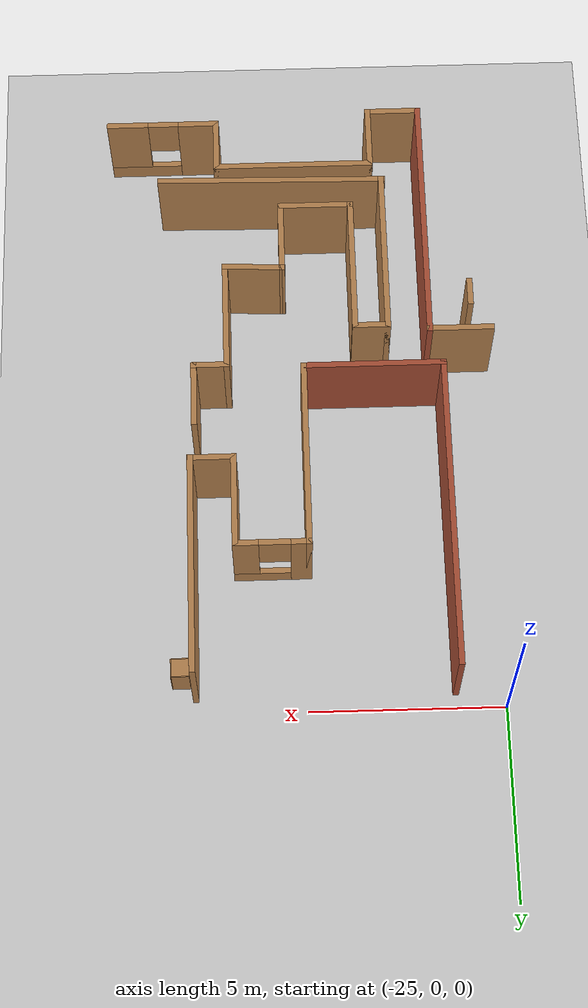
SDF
<sdf version="1.7">
 <world name="default">
  <model name="ground_plane">
   <static>1</static>
   <link name="link">
    <collision name="collision">
     <geometry><plane><normal>0 0 1</normal><size>100 100</size></plane></geometry>
     <surface><friction><ode><mu>100</mu><mu2>50</mu2></ode></friction></surface>
    </collision>
    <visual name="visual">
     <cast_shadows>0</cast_shadows>
     <geometry><plane><normal>0 0 1</normal><size>100 100</size></plane></geometry>
     <material>
      <script><uri>file://media/materials/scripts/gazebo.material</uri><name>Gazebo/Grey</name></script>
     </material>
    </visual>
   </link>
  </model>
  <model name="simple_maze">
   <pose>-16.3821 -8.2673 0 0 -0 0</pose>
   <link name="Wall_34">
    <collision name="Wall_34_Collision">
     <geometry><box><size>8.25 0.15 2.5</size></box></geometry>
     <pose>0 0 1.25 0 -0 0</pose>
    </collision>
    <visual name="Wall_34_Visual">
     <pose>0 0 1.25 0 -0 0</pose>
     <geometry><box><size>8.25 0.15 2.5</size></box></geometry>
     <material>
      <script><uri>file://media/materials/scripts/gazebo.material</uri><name>Gazebo/Bricks</name></script>
      <ambient>1 1 1 1</ambient>
     </material>
     <meta><layer>0</layer></meta>
    </visual>
    <pose>-7.34482 3.78737 0 0 -0 -1.5708</pose>
   </link>
   <link name="Wall_35">
    <collision name="Wall_35_Collision">
     <geometry><box><size>3.75 0.15 2.5</size></box></geometry>
     <pose>0 0 1.25 0 -0 0</pose>
    </collision>
    <visual name="Wall_35_Visual">
     <pose>0 0 1.25 0 -0 0</pose>
     <geometry><box><size>3.75 0.15 2.5</size></box></geometry>
     <material>
      <script><uri>file://media/materials/scripts/gazebo.material</uri><name>Gazebo/Bricks</name></script>
      <ambient>1 1 1 1</ambient>
     </material>
     <meta><layer>0</layer></meta>
    </visual>
    <pose>-5.54482 -0.26263 0 0 -0 0</pose>
   </link>
   <link name="Wall_36">
    <collision name="Wall_36_Collision">
     <geometry><box><size>5 0.15 2.5</size></box></geometry>
     <pose>0 0 1.25 0 -0 0</pose>
    </collision>
    <visual name="Wall_36_Visual">
     <pose>0 0 1.25 0 -0 0</pose>
     <geometry><box><size>5 0.15 2.5</size></box></geometry>
     <material>
      <script><uri>file://media/materials/scripts/gazebo.material</uri><name>Gazebo/Wood</name></script>
      <ambient>1 1 1 1</ambient>
     </material>
     <meta><layer>0</layer></meta>
    </visual>
    <pose>-3.74482 2.16237 0 0 -0 1.5708</pose>
   </link>
   <link name="Wall_37">
    <pose>-2.81982 4.58737 0 0 -0 0</pose>
    <visual name="Wall_37_Visual_0">
     <pose>-0.73022 0 1.25 0 -0 0</pose>
     <geometry><box><size>0.539559 0.15 2.5</size></box></geometry>
     <material>
      <script><uri>file://media/materials/scripts/gazebo.material</uri><name>Gazebo/Wood</name></script>
      <ambient>1 1 1 1</ambient>
     </material>
     <meta><layer>0</layer></meta>
    </visual>
    <collision name="Wall_37_Collision_0">
     <geometry><box><size>0.539559 0.15 2.5</size></box></geometry>
     <pose>-0.73022 0 1.25 0 -0 0</pose>
    </collision>
    <visual name="Wall_37_Visual_1">
     <pose>0.26978 0 0.25 0 -0 0</pose>
     <geometry><box><size>1.46044 0.15 0.5</size></box></geometry>
     <material>
      <script><uri>file://media/materials/scripts/gazebo.material</uri><name>Gazebo/Wood</name></script>
      <ambient>1 1 1 1</ambient>
     </material>
     <meta><layer>0</layer></meta>
    </visual>
    <collision name="Wall_37_Collision_1">
     <geometry><box><size>1.46044 0.15 0.5</size></box></geometry>
     <pose>0.26978 0 0.25 0 -0 0</pose>
    </collision>
    <visual name="Wall_37_Visual_2">
     <pose>0.66978 0 1.5 0 -0 0</pose>
     <geometry><box><size>0.660441 0.15 2</size></box></geometry>
     <material>
      <script><uri>file://media/materials/scripts/gazebo.material</uri><name>Gazebo/Wood</name></script>
      <ambient>1 1 1 1</ambient>
     </material>
     <meta><layer>0</layer></meta>
    </visual>
    <collision name="Wall_37_Collision_2">
     <geometry><box><size>0.660441 0.15 2</size></box></geometry>
     <pose>0.66978 0 1.5 0 -0 0</pose>
    </collision>
    <visual name="Wall_37_Visual_3">
     <pose>-0.060441 0 1.9 0 -0 0</pose>
     <geometry><box><size>0.8 0.15 1.2</size></box></geometry>
     <material>
      <script><uri>file://media/materials/scripts/gazebo.material</uri><name>Gazebo/Wood</name></script>
      <ambient>1 1 1 1</ambient>
     </material>
     <meta><layer>0</layer></meta>
    </visual>
    <collision name="Wall_37_Collision_3">
     <geometry><box><size>0.8 0.15 1.2</size></box></geometry>
     <pose>-0.060441 0 1.9 0 -0 0</pose>
    </collision>
   </link>
   <link name="Wall_38">
    <collision name="Wall_38_Collision">
     <geometry><box><size>2.5 0.15 2.5</size></box></geometry>
     <pose>0 0 1.25 0 -0 0</pose>
    </collision>
    <visual name="Wall_38_Visual">
     <pose>0 0 1.25 0 -0 0</pose>
     <geometry><box><size>2.5 0.15 2.5</size></box></geometry>
     <material>
      <script><uri>file://media/materials/scripts/gazebo.material</uri><name>Gazebo/Wood</name></script>
      <ambient>1 1 1 1</ambient>
     </material>
     <meta><layer>0</layer></meta>
    </visual>
    <pose>-1.89482 3.41237 0 0 -0 -1.5708</pose>
   </link>
   <link name="Wall_39">
    <collision name="Wall_39_Collision">
     <geometry><box><size>1.25 0.15 2.5</size></box></geometry>
     <pose>0 0 1.25 0 -0 0</pose>
    </collision>
    <visual name="Wall_39_Visual">
     <pose>0 0 1.25 0 -0 0</pose>
     <geometry><box><size>1.25 0.15 2.5</size></box></geometry>
     <material>
      <script><uri>file://media/materials/scripts/gazebo.material</uri><name>Gazebo/Wood</name></script>
      <ambient>1 1 1 1</ambient>
     </material>
     <meta><layer>0</layer></meta>
    </visual>
    <pose>-1.34482 2.23737 0 0 -0 0</pose>
   </link>
   <link name="Wall_40">
    <collision name="Wall_40_Collision">
     <geometry><box><size>5.75 0.15 2.5</size></box></geometry>
     <pose>0 0 1.25 0 -0 0</pose>
    </collision>
    <visual name="Wall_40_Visual">
     <pose>0 0 1.25 0 -0 0</pose>
     <geometry><box><size>5.75 0.15 2.5</size></box></geometry>
     <material>
      <script><uri>file://media/materials/scripts/gazebo.material</uri><name>Gazebo/Wood</name></script>
      <ambient>1 1 1 1</ambient>
     </material>
     <meta><layer>0</layer></meta>
    </visual>
    <pose>-0.794816 5.03737 0 0 -0 1.5708</pose>
   </link>
   <link name="Wall_63">
    <collision name="Wall_63_Collision">
     <geometry><box><size>0.75 0.15 2.5</size></box></geometry>
     <pose>0 0 1.25 0 -0 0</pose>
    </collision>
    <visual name="Wall_63_Visual">
     <pose>0 0 1.25 0 -0 0</pose>
     <geometry><box><size>0.75 0.15 2.5</size></box></geometry>
     <material>
      <script><uri>file://media/materials/scripts/gazebo.material</uri><name>Gazebo/Wood</name></script>
      <ambient>1 1 1 1</ambient>
     </material>
     <meta><layer>0</layer></meta>
    </visual>
    <pose>-8.14175 -2.28737 0 0 -0 1.5708</pose>
   </link>
   <link name="Wall_68">
    <collision name="Wall_68_Collision">
     <geometry><box><size>1.75 0.15 2.5</size></box></geometry>
     <pose>0 0 1.25 0 -0 0</pose>
    </collision>
    <visual name="Wall_68_Visual">
     <pose>0 0 1.25 0 -0 0</pose>
     <geometry><box><size>1.75 0.15 2.5</size></box></geometry>
     <material>
      <script><uri>file://media/materials/scripts/gazebo.material</uri><name>Gazebo/Wood</name></script>
      <ambient>1 1 1 1</ambient>
     </material>
     <meta><layer>0</layer></meta>
    </visual>
    <pose>-7.84175 -1.23737 0 0 -0 0</pose>
   </link>
   <link name="Wall_69">
    <collision name="Wall_69_Collision">
     <geometry><box><size>6.75 0.15 2.5</size></box></geometry>
     <pose>0 0 1.25 0 -0 0</pose>
    </collision>
    <visual name="Wall_69_Visual">
     <pose>0 0 1.25 0 -0 0</pose>
     <geometry><box><size>6.75 0.15 2.5</size></box></geometry>
     <material>
      <script><uri>file://media/materials/scripts/gazebo.material</uri><name>Gazebo/Bricks</name></script>
      <ambient>1 1 1 1</ambient>
     </material>
     <meta><layer>0</layer></meta>
    </visual>
    <pose>-7.04175 -4.53737 0 0 -0 -1.5708</pose>
   </link>
   <link name="Wall_70">
    <collision name="Wall_70_Collision">
     <geometry><box><size>1.5 0.15 2.5</size></box></geometry>
     <pose>0 0 1.25 0 -0 0</pose>
    </collision>
    <visual name="Wall_70_Visual">
     <pose>0 0 1.25 0 -0 0</pose>
     <geometry><box><size>1.5 0.15 2.5</size></box></geometry>
     <material>
      <script><uri>file://media/materials/scripts/gazebo.material</uri><name>Gazebo/Wood</name></script>
      <ambient>1 1 1 1</ambient>
     </material>
     <meta><layer>0</layer></meta>
    </visual>
    <pose>-6.36675 -7.83737 0 0 -0 0</pose>
   </link>
   <link name="Wall_71">
    <collision name="Wall_71_Collision">
     <geometry><box><size>1.75 0.15 2.5</size></box></geometry>
     <pose>0 0 1.25 0 -0 0</pose>
    </collision>
    <visual name="Wall_71_Visual">
     <pose>0 0 1.25 0 -0 0</pose>
     <geometry><box><size>1.75 0.15 2.5</size></box></geometry>
     <material>
      <script><uri>file://media/materials/scripts/gazebo.material</uri><name>Gazebo/Wood</name></script>
      <ambient>1 1 1 1</ambient>
     </material>
     <meta><layer>0</layer></meta>
    </visual>
    <pose>-5.69175 -7.03737 0 0 -0 1.5708</pose>
   </link>
   <link name="Wall_72">
    <collision name="Wall_72_Collision">
     <geometry><box><size>4.25 0.15 2.5</size></box></geometry>
     <pose>0 0 1.25 0 -0 0</pose>
    </collision>
    <visual name="Wall_72_Visual">
     <pose>0 0 1.25 0 -0 0</pose>
     <geometry><box><size>4.25 0.15 2.5</size></box></geometry>
     <material>
      <script><uri>file://media/materials/scripts/gazebo.material</uri><name>Gazebo/Wood</name></script>
      <ambient>1 1 1 1</ambient>
     </material>
     <meta><layer>0</layer></meta>
    </visual>
    <pose>-3.64175 -6.23737 0 0 -0 0</pose>
   </link>
   <link name="Wall_73">
    <collision name="Wall_73_Collision">
     <geometry><box><size>1.5 0.15 2.5</size></box></geometry>
     <pose>0 0 1.25 0 -0 0</pose>
    </collision>
    <visual name="Wall_73_Visual">
     <pose>0 0 1.25 0 -0 0</pose>
     <geometry><box><size>1.5 0.15 2.5</size></box></geometry>
     <material>
      <script><uri>file://media/materials/scripts/gazebo.material</uri><name>Gazebo/Wood</name></script>
      <ambient>1 1 1 1</ambient>
     </material>
     <meta><layer>0</layer></meta>
    </visual>
    <pose>-1.59175 -6.91237 0 0 -0 -1.5708</pose>
   </link>
   <link name="Wall_74">
    <pose>-0.166749 -7.58737 0 0 -0 0</pose>
    <visual name="Wall_74_Visual_0">
     <pose>-0.951492 0 1.25 0 -0 0</pose>
     <geometry><box><size>1.09702 0.15 2.5</size></box></geometry>
     <material>
      <script><uri>file://media/materials/scripts/gazebo.material</uri><name>Gazebo/Wood</name></script>
      <ambient>1 1 1 1</ambient>
     </material>
     <meta><layer>0</layer></meta>
    </visual>
    <collision name="Wall_74_Collision_0">
     <geometry><box><size>1.09702 0.15 2.5</size></box></geometry>
     <pose>-0.951492 0 1.25 0 -0 0</pose>
    </collision>
    <visual name="Wall_74_Visual_1">
     <pose>0.548508 0 0.25 0 -0 0</pose>
     <geometry><box><size>1.90298 0.15 0.5</size></box></geometry>
     <material>
      <script><uri>file://media/materials/scripts/gazebo.material</uri><name>Gazebo/Wood</name></script>
      <ambient>1 1 1 1</ambient>
     </material>
     <meta><layer>0</layer></meta>
    </visual>
    <collision name="Wall_74_Collision_1">
     <geometry><box><size>1.90298 0.15 0.5</size></box></geometry>
     <pose>0.548508 0 0.25 0 -0 0</pose>
    </collision>
    <visual name="Wall_74_Visual_2">
     <pose>0.948508 0 1.5 0 -0 0</pose>
     <geometry><box><size>1.10298 0.15 2</size></box></geometry>
     <material>
      <script><uri>file://media/materials/scripts/gazebo.material</uri><name>Gazebo/Wood</name></script>
      <ambient>1 1 1 1</ambient>
     </material>
     <meta><layer>0</layer></meta>
    </visual>
    <collision name="Wall_74_Collision_2">
     <geometry><box><size>1.10298 0.15 2</size></box></geometry>
     <pose>0.948508 0 1.5 0 -0 0</pose>
    </collision>
    <visual name="Wall_74_Visual_3">
     <pose>-0.002984 0 1.9 0 -0 0</pose>
     <geometry><box><size>0.8 0.15 1.2</size></box></geometry>
     <material>
      <script><uri>file://media/materials/scripts/gazebo.material</uri><name>Gazebo/Wood</name></script>
      <ambient>1 1 1 1</ambient>
     </material>
     <meta><layer>0</layer></meta>
    </visual>
    <collision name="Wall_74_Collision_3">
     <geometry><box><size>0.8 0.15 1.2</size></box></geometry>
     <pose>-0.002984 0 1.9 0 -0 0</pose>
    </collision>
   </link>
   <link name="Wall_78">
    <collision name="Wall_78_Collision">
     <geometry><box><size>6.05919 0.15 2.5</size></box></geometry>
     <pose>0 0 1.25 0 -0 0</pose>
    </collision>
    <visual name="Wall_78_Visual">
     <pose>0 0 1.25 0 -0 0</pose>
     <geometry><box><size>6.05919 0.15 2.5</size></box></geometry>
     <material>
      <script><uri>file://media/materials/scripts/gazebo.material</uri><name>Gazebo/Wood</name></script>
      <ambient>1 1 1 1</ambient>
     </material>
     <meta><layer>0</layer></meta>
    </visual>
    <pose>-3.04587 -5.7846 0 0 -0 3.12373</pose>
   </link>
   <link name="Wall_79">
    <collision name="Wall_79_Collision">
     <geometry><box><size>4.5 0.15 2.5</size></box></geometry>
     <pose>0 0 1.25 0 -0 0</pose>
    </collision>
    <visual name="Wall_79_Visual">
     <pose>0 0 1.25 0 -0 0</pose>
     <geometry><box><size>4.5 0.15 2.5</size></box></geometry>
     <material>
      <script><uri>file://media/materials/scripts/gazebo.material</uri><name>Gazebo/Wood</name></script>
      <ambient>1 1 1 1</ambient>
     </material>
     <meta><layer>0</layer></meta>
    </visual>
    <pose>-5.96481 -3.55683 0 0 -0 1.5708</pose>
   </link>
   <link name="Wall_82">
    <collision name="Wall_82_Collision">
     <geometry><box><size>1 0.15 2.5</size></box></geometry>
     <pose>0 0 1.25 0 -0 0</pose>
    </collision>
    <visual name="Wall_82_Visual">
     <pose>0 0 1.25 0 -0 0</pose>
     <geometry><box><size>1 0.15 2.5</size></box></geometry>
     <material>
      <script><uri>file://media/materials/scripts/gazebo.material</uri><name>Gazebo/Wood</name></script>
      <ambient>1 1 1 1</ambient>
     </material>
     <meta><layer>0</layer></meta>
    </visual>
    <pose>-5.53981 -1.38183 0 0 -0 0</pose>
   </link>
   <link name="Wall_83">
    <collision name="Wall_83_Collision">
     <geometry><box><size>3.75 0.15 2.5</size></box></geometry>
     <pose>0 0 1.25 0 -0 0</pose>
    </collision>
    <visual name="Wall_83_Visual">
     <pose>0 0 1.25 0 -0 0</pose>
     <geometry><box><size>3.75 0.15 2.5</size></box></geometry>
     <material>
      <script><uri>file://media/materials/scripts/gazebo.material</uri><name>Gazebo/Wood</name></script>
      <ambient>1 1 1 1</ambient>
     </material>
     <meta><layer>0</layer></meta>
    </visual>
    <pose>-5.11482 -3.18183 0 0 -0 -1.5708</pose>
   </link>
   <link name="Wall_84">
    <collision name="Wall_84_Collision">
     <geometry><box><size>2 0.15 2.5</size></box></geometry>
     <pose>0 0 1.25 0 -0 0</pose>
    </collision>
    <visual name="Wall_84_Visual">
     <pose>0 0 1.25 0 -0 0</pose>
     <geometry><box><size>2 0.15 2.5</size></box></geometry>
     <material>
      <script><uri>file://media/materials/scripts/gazebo.material</uri><name>Gazebo/Wood</name></script>
      <ambient>1 1 1 1</ambient>
     </material>
     <meta><layer>0</layer></meta>
    </visual>
    <pose>-4.18982 -4.98184 0 0 -0 0</pose>
   </link>
   <link name="Wall_85">
    <collision name="Wall_85_Collision">
     <geometry><box><size>2 0.15 2.5</size></box></geometry>
     <pose>0 0 1.25 0 -0 0</pose>
    </collision>
    <visual name="Wall_85_Visual">
     <pose>0 0 1.25 0 -0 0</pose>
     <geometry><box><size>2 0.15 2.5</size></box></geometry>
     <material>
      <script><uri>file://media/materials/scripts/gazebo.material</uri><name>Gazebo/Wood</name></script>
      <ambient>1 1 1 1</ambient>
     </material>
     <meta><layer>0</layer></meta>
    </visual>
    <pose>-3.26482 -4.05684 0 0 -0 1.5708</pose>
   </link>
   <link name="Wall_86">
    <collision name="Wall_86_Collision">
     <geometry><box><size>1.64986 0.15 2.5</size></box></geometry>
     <pose>0 0 1.25 0 -0 0</pose>
    </collision>
    <visual name="Wall_86_Visual">
     <pose>0 0 1.25 0 -0 0</pose>
     <geometry><box><size>1.64986 0.15 2.5</size></box></geometry>
     <material>
      <script><uri>file://media/materials/scripts/gazebo.material</uri><name>Gazebo/Wood</name></script>
      <ambient>1 1 1 1</ambient>
     </material>
     <meta><layer>0</layer></meta>
    </visual>
    <pose>-2.51571 -3.16701 0 0 -0 -0.046927</pose>
   </link>
   <link name="Wall_89">
    <collision name="Wall_89_Collision">
     <geometry><box><size>3 0.15 2.5</size></box></geometry>
     <pose>0 0 1.25 0 -0 0</pose>
    </collision>
    <visual name="Wall_89_Visual">
     <pose>0 0 1.25 0 -0 0</pose>
     <geometry><box><size>3 0.15 2.5</size></box></geometry>
     <material>
      <script><uri>file://media/materials/scripts/gazebo.material</uri><name>Gazebo/Wood</name></script>
      <ambient>1 1 1 1</ambient>
     </material>
     <meta><layer>0</layer></meta>
    </visual>
    <pose>-1.7666 -1.77719 0 0 -0 1.5708</pose>
   </link>
   <link name="Wall_90">
    <collision name="Wall_90_Collision">
     <geometry><box><size>1 0.15 2.5</size></box></geometry>
     <pose>0 0 1.25 0 -0 0</pose>
    </collision>
    <visual name="Wall_90_Visual">
     <pose>0 0 1.25 0 -0 0</pose>
     <geometry><box><size>1 0.15 2.5</size></box></geometry>
     <material>
      <script><uri>file://media/materials/scripts/gazebo.material</uri><name>Gazebo/Wood</name></script>
      <ambient>1 1 1 1</ambient>
     </material>
     <meta><layer>0</layer></meta>
    </visual>
    <pose>-1.3416 -0.352193 0 0 -0 0</pose>
   </link>
   <link name="Wall_91">
    <collision name="Wall_91_Collision">
     <geometry><box><size>1.75 0.15 2.5</size></box></geometry>
     <pose>0 0 1.25 0 -0 0</pose>
    </collision>
    <visual name="Wall_91_Visual">
     <pose>0 0 1.25 0 -0 0</pose>
     <geometry><box><size>1.75 0.15 2.5</size></box></geometry>
     <material>
      <script><uri>file://media/materials/scripts/gazebo.material</uri><name>Gazebo/Wood</name></script>
      <ambient>1 1 1 1</ambient>
     </material>
     <meta><layer>0</layer></meta>
    </visual>
    <pose>-0.916602 0.447808 0 0 -0 1.5708</pose>
   </link>
   <static>1</static>
  </model>
  <model name="cabinet">
   <static>1</static>
   <link name="cabinet_bottom_plate">
    <inertial>
     <pose>0 0 -1 0 -0 0</pose>
     <inertia><ixx>2.05</ixx><ixy>0</ixy><ixz>0</ixz><iyy>2.05</iyy><iyz>0</iyz><izz>2.05</izz></inertia>
     <mass>25</mass>
    </inertial>
    <collision name="cabinet_bottom_plate_geom">
     <pose>0 0 0.01 0 -0 0</pose>
     <geometry><box><size>0.45 0.45 0.02</size></box></geometry>
    </collision>
    <visual name="cabinet_bottom_plate_geom_visual">
     <pose>0 0 0.01 0 -0 0</pose>
     <geometry><box><size>0.45 0.45 0.02</size></box></geometry>
     <material>
      <script><uri>file://media/materials/scripts/gazebo.material</uri><name>Gazebo/Wood</name></script>
     </material>
    </visual>
    <collision name="cabinet_bottom_plate_geom_cabinet_back_plate">
     <pose>0.235 0 0.51 0 -0 0</pose>
     <geometry><box><size>0.02 0.45 1.02</size></box></geometry>
    </collision>
    <visual name="cabinet_bottom_plate_geom_cabinet_back_plate_visual">
     <pose>0.235 0 0.51 0 -0 0</pose>
     <geometry><box><size>0.02 0.45 1.02</size></box></geometry>
     <material>
      <script><uri>file://media/materials/scripts/gazebo.material</uri><name>Gazebo/Wood</name></script>
     </material>
    </visual>
    <collision name="cabinet_bottom_plate_geom_cabinet_left_plate">
     <pose>0 0.235 0.51 0 -0 0</pose>
     <geometry><box><size>0.45 0.02 1.02</size></box></geometry>
    </collision>
    <visual name="cabinet_bottom_plate_geom_cabinet_left_plate_visual">
     <pose>0 0.235 0.51 0 -0 0</pose>
     <geometry><box><size>0.45 0.02 1.02</size></box></geometry>
     <material>
      <script><uri>file://media/materials/scripts/gazebo.material</uri><name>Gazebo/Wood</name></script>
     </material>
    </visual>
    <collision name="cabinet_bottom_plate_geom_cabinet_middle_plate">
     <pose>0 0 0.51 0 -0 0</pose>
     <geometry><box><size>0.45 0.45 0.02</size></box></geometry>
    </collision>
    <visual name="cabinet_bottom_plate_geom_cabinet_middle_plate_visual">
     <pose>0 0 0.51 0 -0 0</pose>
     <geometry><box><size>0.45 0.45 0.02</size></box></geometry>
     <material>
      <script><uri>file://media/materials/scripts/gazebo.material</uri><name>Gazebo/Wood</name></script>
     </material>
    </visual>
    <collision name="cabinet_bottom_plate_geom_cabinet_right_plate">
     <pose>0 -0.235 0.51 0 -0 0</pose>
     <geometry><box><size>0.45 0.02 1.02</size></box></geometry>
    </collision>
    <visual name="cabinet_bottom_plate_geom_cabinet_right_plate_visual">
     <pose>0 -0.235 0.51 0 -0 0</pose>
     <geometry><box><size>0.45 0.02 1.02</size></box></geometry>
     <material>
      <script><uri>file://media/materials/scripts/gazebo.material</uri><name>Gazebo/Wood</name></script>
     </material>
    </visual>
    <collision name="cabinet_bottom_plate_geom_cabinet_top_plate">
     <pose>0 0 1.01 0 -0 0</pose>
     <geometry><box><size>0.45 0.45 0.02</size></box></geometry>
    </collision>
    <visual name="cabinet_bottom_plate_geom_cabinet_top_plate_visual">
     <pose>0 0 1.01 0 -0 0</pose>
     <geometry><box><size>0.45 0.45 0.02</size></box></geometry>
     <material>
      <script><uri>file://media/materials/scripts/gazebo.material</uri><name>Gazebo/Wood</name></script>
     </material>
    </visual>
   </link>
   <pose>-16.8145 -0.963906 0 0 -0 0</pose>
  </model>
 </world>
</sdf>
